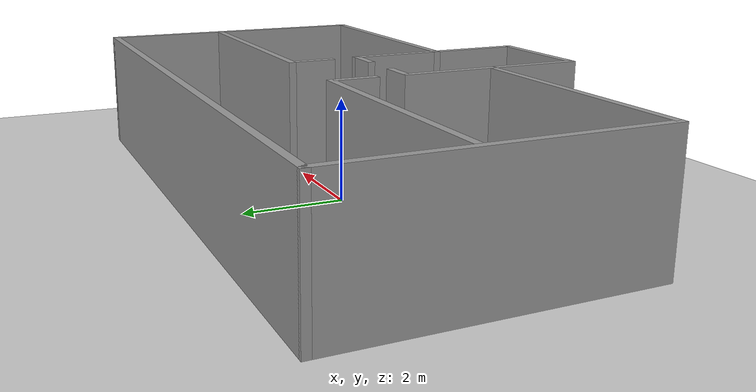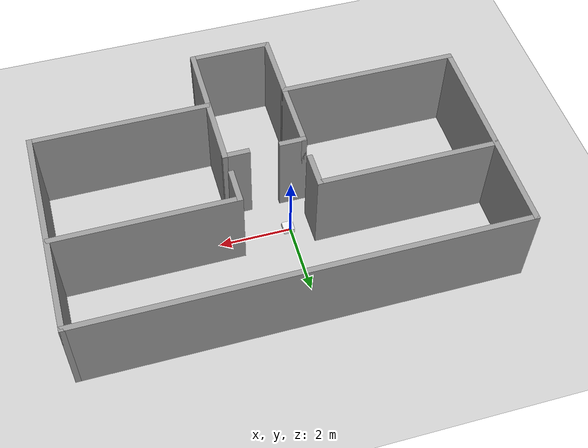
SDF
<sdf version="1.7">
 <world name="default">
  <light name="sun" type="directional">
   <pose>0 0 10 0 -0 0</pose>
   <diffuse>0.8 0.8 0.8 1</diffuse>
   <specular>0.2 0.2 0.2 1</specular>
   <attenuation>
    <range>1000</range>
    <constant>0.9</constant>
    <linear>0.01</linear>
    <quadratic>0.001</quadratic>
   </attenuation>
   <direction>-0.5 0.1 -0.9</direction>
   <spot><inner_angle>0</inner_angle><outer_angle>0</outer_angle><falloff>0</falloff></spot>
  </light>
  <model name="ground_plane">
   <static>1</static>
   <link name="link">
    <collision name="collision">
     <geometry><plane><normal>0 0 1</normal><size>100 100</size></plane></geometry>
     <surface><friction><ode><mu>100</mu><mu2>50</mu2></ode></friction></surface>
    </collision>
    <visual name="visual">
     <cast_shadows>0</cast_shadows>
     <geometry><plane><normal>0 0 1</normal><size>100 100</size></plane></geometry>
     <material>
      <script><uri>file://media/materials/scripts/gazebo.material</uri><name>Gazebo/Grey</name></script>
     </material>
    </visual>
   </link>
  </model>
  <gravity>0 0 -9.8</gravity>
  <magnetic_field>6e-06 2.3e-05 -4.2e-05</magnetic_field>
  <atmosphere type="adiabatic"/>
  <physics type="ode">
   <max_step_size>0.001</max_step_size>
   <real_time_factor>1</real_time_factor>
   <real_time_update_rate>1000</real_time_update_rate>
  </physics>
  <scene><ambient>0.4 0.4 0.4 1</ambient><background>0.7 0.7 0.7 1</background><shadows>1</shadows></scene>
  <audio><device>default</device></audio>
  <spherical_coordinates>
   <surface_model>EARTH_WGS84</surface_model>
   <latitude_deg>0</latitude_deg>
   <longitude_deg>0</longitude_deg>
   <elevation>0</elevation>
   <heading_deg>0</heading_deg>
  </spherical_coordinates>
  <model name="my_bot">
   <link name="base_link">
    <inertial>
     <pose>0.055714 0 0.078571 0 -0 0</pose>
     <mass>0.7</mass>
     <inertia>
      <ixx>0.0064169</ixx>
      <ixy>0</ixy>
      <ixz>0.00118929</ixz>
      <iyy>0.00745405</iyy>
      <iyz>0</iyz>
      <izz>0.00876214</izz>
     </inertia>
    </inertial>
    <collision name="base_link_fixed_joint_lump__chassis_collision">
     <pose>0.05 0 0.075 0 -0 0</pose>
     <geometry><box><size>0.3 0.3 0.15</size></box></geometry>
    </collision>
    <collision name="base_link_fixed_joint_lump__caster_wheel_collision_1">
     <pose>0.14 0 0 0 -0 0</pose>
     <geometry><sphere><radius>0.05</radius></sphere></geometry>
     <surface><friction><ode><mu>0.001</mu><mu2>0.001</mu2></ode></friction></surface>
    </collision>
    <collision name="base_link_fixed_joint_lump__laser_frame_collision_2">
     <pose>0 0 0.175 0 -0 0</pose>
     <geometry><cylinder><length>0.04</length><radius>0.05</radius></cylinder></geometry>
    </collision>
    <visual name="base_link_fixed_joint_lump__chassis_visual">
     <pose>0.05 0 0.075 0 -0 0</pose>
     <geometry><box><size>0.3 0.3 0.15</size></box></geometry>
     <material>
      <script><name>Gazebo/White</name><uri>file://media/materials/scripts/gazebo.material</uri></script>
     </material>
    </visual>
    <visual name="base_link_fixed_joint_lump__caster_wheel_visual_1">
     <pose>0.14 0 0 0 -0 0</pose>
     <geometry><sphere><radius>0.05</radius></sphere></geometry>
     <material>
      <script><name>Gazebo/Black</name><uri>file://media/materials/scripts/gazebo.material</uri></script>
     </material>
    </visual>
    <visual name="base_link_fixed_joint_lump__laser_frame_visual_2">
     <pose>0 0 0.175 0 -0 0</pose>
     <geometry><cylinder><length>0.04</length><radius>0.05</radius></cylinder></geometry>
     <material>
      <script><name>Gazebo/Red</name><uri>file://media/materials/scripts/gazebo.material</uri></script>
     </material>
    </visual>
    <sensor name="laser" type="ray">
     <visualize>1</visualize>
     <update_rate>10</update_rate>
     <ray>
      <scan>
       <horizontal>
        <samples>360</samples>
        <min_angle>-3.14</min_angle>
        <max_angle>3.14</max_angle>
        <resolution>1</resolution>
       </horizontal>
       <vertical><samples>1</samples><min_angle>0</min_angle><max_angle>0</max_angle></vertical>
      </scan>
      <range><min>0.3</min><max>12</max></range>
     </ray>
     <plugin name="laser_controller" filename="libgazebo_ros_ray_sensor.so">
      <ros><argument>~/out:=scan</argument></ros>
      <output_type>sensor_msgs/LaserScan</output_type>
      <frame_name>laser_frame</frame_name>
     </plugin>
     <pose>0 0 0.175 0 -0 0</pose>
    </sensor>
   </link>
   <joint name="left_wheel_joint" type="revolute">
    <pose relative_to="base_link">0 0.175 0 -1.5708 0 0</pose>
    <parent>base_link</parent>
    <child>left_wheel</child>
    <axis>
     <xyz>0 0 1</xyz>
     <limit><lower>-1e+16</lower><upper>1e+16</upper></limit>
     <dynamics><spring_reference>0</spring_reference><spring_stiffness>0</spring_stiffness></dynamics>
    </axis>
   </joint>
   <link name="left_wheel">
    <pose relative_to="left_wheel_joint">0 0 0 0 -0 0</pose>
    <inertial>
     <mass>0.1</mass>
     <inertia>
      <ixx>7.58333e-05</ixx>
      <ixy>0</ixy>
      <ixz>0</ixz>
      <iyy>7.58333e-05</iyy>
      <iyz>0</iyz>
      <izz>0.000125</izz>
     </inertia>
    </inertial>
    <collision name="left_wheel_collision"><geometry><sphere><radius>0.05</radius></sphere></geometry></collision>
    <visual name="left_wheel_visual">
     <geometry><cylinder><length>0.04</length><radius>0.05</radius></cylinder></geometry>
     <material>
      <script><name>Gazebo/Blue</name><uri>file://media/materials/scripts/gazebo.material</uri></script>
     </material>
    </visual>
   </link>
   <joint name="right_wheel_joint" type="revolute">
    <pose relative_to="base_link">0 -0.175 0 1.5708 -0 0</pose>
    <parent>base_link</parent>
    <child>right_wheel</child>
    <axis>
     <xyz>0 0 -1</xyz>
     <limit><lower>-1e+16</lower><upper>1e+16</upper></limit>
     <dynamics><spring_reference>0</spring_reference><spring_stiffness>0</spring_stiffness></dynamics>
    </axis>
   </joint>
   <link name="right_wheel">
    <pose relative_to="right_wheel_joint">0 0 0 0 -0 0</pose>
    <inertial>
     <mass>0.1</mass>
     <inertia>
      <ixx>7.58333e-05</ixx>
      <ixy>0</ixy>
      <ixz>0</ixz>
      <iyy>7.58333e-05</iyy>
      <iyz>0</iyz>
      <izz>0.000125</izz>
     </inertia>
    </inertial>
    <collision name="right_wheel_collision">
     <geometry><sphere><radius>0.05</radius></sphere></geometry>
    </collision>
    <visual name="right_wheel_visual">
     <geometry><cylinder><length>0.04</length><radius>0.05</radius></cylinder></geometry>
     <material>
      <script><name>Gazebo/Blue</name><uri>file://media/materials/scripts/gazebo.material</uri></script>
     </material>
    </visual>
   </link>
   <plugin name="gazebo_ros" filename="libgazebo_ros_init.so"/>
   <plugin name="gazebo_ros_state" filename="libgazebo_ros_p3d.so">
    <body_name>base_link</body_name>
    <frame_name>map</frame_name>
    <update_rate>50.0</update_rate>
   </plugin>
   <static>0</static>
   <plugin name="gazebo_ros2_control" filename="libgazebo_ros2_control.so">
    <parameters>/home/hoanglong/myrobot_ws/src/install/robot_model/share/robot_model/config/my_controllers.yaml</parameters>
   </plugin>
   <pose>0.012835 0.000365 0.049997 -1.6e-05 -2.1e-05 -0.001203</pose>
  </model>
  <model name="MAP">
   <pose>0.438152 -0.878426 0 0 -0 0</pose>
   <link name="Wall_1">
    <collision name="Wall_1_Collision">
     <geometry><box><size>12 0.15 2.5</size></box></geometry>
     <pose>0 0 1.25 0 -0 0</pose>
    </collision>
    <visual name="Wall_1_Visual">
     <pose>0 0 1.25 0 -0 0</pose>
     <geometry><box><size>12 0.15 2.5</size></box></geometry>
     <material>
      <script><uri>file://media/materials/scripts/gazebo.material</uri><name>Gazebo/Grey</name></script>
      <ambient>1 1 1 1</ambient>
     </material>
     <meta><layer>0</layer></meta>
    </visual>
    <pose>-0 3.85 0 0 -0 0</pose>
   </link>
   <link name="Wall_13">
    <collision name="Wall_13_Collision">
     <geometry><box><size>5 0.15 2.5</size></box></geometry>
     <pose>0 0 1.25 0 -0 0</pose>
    </collision>
    <visual name="Wall_13_Visual">
     <pose>0 0 1.25 0 -0 0</pose>
     <geometry><box><size>5 0.15 2.5</size></box></geometry>
     <material>
      <script><uri>file://media/materials/scripts/gazebo.material</uri><name>Gazebo/Grey</name></script>
      <ambient>1 1 1 1</ambient>
     </material>
     <meta><layer>0</layer></meta>
    </visual>
    <pose>-3.5 -2 0 0 -0 0</pose>
   </link>
   <link name="Wall_14">
    <collision name="Wall_14_Collision">
     <geometry><box><size>2 0.15 2.5</size></box></geometry>
     <pose>0 0 1.25 0 -0 0</pose>
    </collision>
    <visual name="Wall_14_Visual">
     <pose>0 0 1.25 0 -0 0</pose>
     <geometry><box><size>2 0.15 2.5</size></box></geometry>
     <material>
      <script><uri>file://media/materials/scripts/gazebo.material</uri><name>Gazebo/Grey</name></script>
      <ambient>1 1 1 1</ambient>
     </material>
     <meta><layer>0</layer></meta>
    </visual>
    <pose>-1.075 -1.075 0 0 -0 1.5708</pose>
   </link>
   <link name="Wall_16">
    <collision name="Wall_16_Collision">
     <geometry><box><size>2 0.15 2.5</size></box></geometry>
     <pose>0 0 1.25 0 -0 0</pose>
    </collision>
    <visual name="Wall_16_Visual">
     <pose>0 0 1.25 0 -0 0</pose>
     <geometry><box><size>2 0.15 2.5</size></box></geometry>
     <material>
      <script><uri>file://media/materials/scripts/gazebo.material</uri><name>Gazebo/Grey</name></script>
      <ambient>1 1 1 1</ambient>
     </material>
     <meta><layer>0</layer></meta>
    </visual>
    <pose>1.075 -1.075 0 0 -0 1.5708</pose>
   </link>
   <link name="Wall_19">
    <collision name="Wall_19_Collision">
     <geometry><box><size>2 0.15 2.5</size></box></geometry>
     <pose>0 0 1.25 0 -0 0</pose>
    </collision>
    <visual name="Wall_19_Visual">
     <pose>0 0 1.25 0 -0 0</pose>
     <geometry><box><size>2 0.15 2.5</size></box></geometry>
     <material>
      <script><uri>file://media/materials/scripts/gazebo.material</uri><name>Gazebo/Grey</name></script>
      <ambient>1 1 1 1</ambient>
     </material>
     <meta><layer>0</layer></meta>
    </visual>
    <pose>-1.075 -2.925 0 0 -0 -1.5708</pose>
   </link>
   <link name="Wall_21">
    <collision name="Wall_21_Collision">
     <geometry><box><size>2 0.15 2.5</size></box></geometry>
     <pose>0 0 1.25 0 -0 0</pose>
    </collision>
    <visual name="Wall_21_Visual">
     <pose>0 0 1.25 0 -0 0</pose>
     <geometry><box><size>2 0.15 2.5</size></box></geometry>
     <material>
      <script><uri>file://media/materials/scripts/gazebo.material</uri><name>Gazebo/Grey</name></script>
      <ambient>1 1 1 1</ambient>
     </material>
     <meta><layer>0</layer></meta>
    </visual>
    <pose>1.075 -2.925 0 0 -0 -1.5708</pose>
   </link>
   <link name="Wall_22">
    <collision name="Wall_22_Collision">
     <geometry><box><size>2.3 0.15 2.5</size></box></geometry>
     <pose>0 0 1.25 0 -0 0</pose>
    </collision>
    <visual name="Wall_22_Visual">
     <pose>0 0 1.25 0 -0 0</pose>
     <geometry><box><size>2.3 0.15 2.5</size></box></geometry>
     <material>
      <script><uri>file://media/materials/scripts/gazebo.material</uri><name>Gazebo/Grey</name></script>
      <ambient>1 1 1 1</ambient>
     </material>
     <meta><layer>0</layer></meta>
    </visual>
    <pose>-0 -3.85 0 0 -0 3.14159</pose>
   </link>
   <link name="Wall_24">
    <collision name="Wall_24_Collision">
     <geometry><box><size>0.75 0.15 2.5</size></box></geometry>
     <pose>0 0 1.25 0 -0 0</pose>
    </collision>
    <visual name="Wall_24_Visual">
     <pose>0 0 1.25 0 -0 0</pose>
     <geometry><box><size>0.75 0.15 2.5</size></box></geometry>
     <material>
      <script><uri>file://media/materials/scripts/gazebo.material</uri><name>Gazebo/Grey</name></script>
      <ambient>1 1 1 1</ambient>
     </material>
     <meta><layer>0</layer></meta>
    </visual>
    <pose>-0.775 -0.15 0 0 -0 0</pose>
   </link>
   <link name="Wall_26">
    <collision name="Wall_26_Collision">
     <geometry><box><size>0.75 0.15 2.5</size></box></geometry>
     <pose>0 0 1.25 0 -0 0</pose>
    </collision>
    <visual name="Wall_26_Visual">
     <pose>0 0 1.25 0 -0 0</pose>
     <geometry><box><size>0.75 0.15 2.5</size></box></geometry>
     <material>
      <script><uri>file://media/materials/scripts/gazebo.material</uri><name>Gazebo/Grey</name></script>
      <ambient>1 1 1 1</ambient>
     </material>
     <meta><layer>0</layer></meta>
    </visual>
    <pose>0.775 -0.15 0 0 -0 3.14159</pose>
   </link>
   <link name="Wall_28">
    <collision name="Wall_28_Collision">
     <geometry><box><size>5 0.15 2.5</size></box></geometry>
     <pose>0 0 1.25 0 -0 0</pose>
    </collision>
    <visual name="Wall_28_Visual">
     <pose>0 0 1.25 0 -0 0</pose>
     <geometry><box><size>5 0.15 2.5</size></box></geometry>
     <material>
      <script><uri>file://media/materials/scripts/gazebo.material</uri><name>Gazebo/Grey</name></script>
      <ambient>1 1 1 1</ambient>
     </material>
     <meta><layer>0</layer></meta>
    </visual>
    <pose>-3.48381 1.3557 0 0 -0 0</pose>
   </link>
   <link name="Wall_29">
    <collision name="Wall_29_Collision">
     <geometry><box><size>1 0.15 2.5</size></box></geometry>
     <pose>0 0 1.25 0 -0 0</pose>
    </collision>
    <visual name="Wall_29_Visual">
     <pose>0 0 1.25 0 -0 0</pose>
     <geometry><box><size>1 0.15 2.5</size></box></geometry>
     <material>
      <script><uri>file://media/materials/scripts/gazebo.material</uri><name>Gazebo/Grey</name></script>
      <ambient>1 1 1 1</ambient>
     </material>
     <meta><layer>0</layer></meta>
    </visual>
    <pose>-1.05881 0.930695 0 0 -0 -1.5708</pose>
   </link>
   <link name="Wall_3">
    <collision name="Wall_3_Collision">
     <geometry><box><size>6 0.15 2.5</size></box></geometry>
     <pose>0 0 1.25 0 -0 0</pose>
    </collision>
    <visual name="Wall_3_Visual">
     <pose>0 0 1.25 0 -0 0</pose>
     <geometry><box><size>6 0.15 2.5</size></box></geometry>
     <material>
      <script><uri>file://media/materials/scripts/gazebo.material</uri><name>Gazebo/Grey</name></script>
      <ambient>1 1 1 1</ambient>
     </material>
     <meta><layer>0</layer></meta>
    </visual>
    <pose>-5.925 0.925 0 0 -0 -1.5708</pose>
   </link>
   <link name="Wall_31">
    <collision name="Wall_31_Collision">
     <geometry><box><size>5 0.15 2.5</size></box></geometry>
     <pose>0 0 1.25 0 -0 0</pose>
    </collision>
    <visual name="Wall_31_Visual">
     <pose>0 0 1.25 0 -0 0</pose>
     <geometry><box><size>5 0.15 2.5</size></box></geometry>
     <material>
      <script><uri>file://media/materials/scripts/gazebo.material</uri><name>Gazebo/Grey</name></script>
      <ambient>1 1 1 1</ambient>
     </material>
     <meta><layer>0</layer></meta>
    </visual>
    <pose>3.46399 1.30956 0 0 -0 3.14159</pose>
   </link>
   <link name="Wall_34">
    <collision name="Wall_34_Collision">
     <geometry><box><size>1 0.15 2.5</size></box></geometry>
     <pose>0 0 1.25 0 -0 0</pose>
    </collision>
    <visual name="Wall_34_Visual">
     <pose>0 0 1.25 0 -0 0</pose>
     <geometry><box><size>1 0.15 2.5</size></box></geometry>
     <material>
      <script><uri>file://media/materials/scripts/gazebo.material</uri><name>Gazebo/Grey</name></script>
      <ambient>1 1 1 1</ambient>
     </material>
     <meta><layer>0</layer></meta>
    </visual>
    <pose>1.04655 0.884557 0 0 -0 -1.5708</pose>
   </link>
   <link name="Wall_6">
    <collision name="Wall_6_Collision">
     <geometry><box><size>6 0.15 2.5</size></box></geometry>
     <pose>0 0 1.25 0 -0 0</pose>
    </collision>
    <visual name="Wall_6_Visual">
     <pose>0 0 1.25 0 -0 0</pose>
     <geometry><box><size>6 0.15 2.5</size></box></geometry>
     <material>
      <script><uri>file://media/materials/scripts/gazebo.material</uri><name>Gazebo/Grey</name></script>
      <ambient>1 1 1 1</ambient>
     </material>
     <meta><layer>0</layer></meta>
    </visual>
    <pose>5.925 0.925 0 0 -0 -1.5708</pose>
   </link>
   <link name="Wall_7">
    <collision name="Wall_7_Collision">
     <geometry><box><size>5 0.15 2.5</size></box></geometry>
     <pose>0 0 1.25 0 -0 0</pose>
    </collision>
    <visual name="Wall_7_Visual">
     <pose>0 0 1.25 0 -0 0</pose>
     <geometry><box><size>5 0.15 2.5</size></box></geometry>
     <material>
      <script><uri>file://media/materials/scripts/gazebo.material</uri><name>Gazebo/Grey</name></script>
      <ambient>1 1 1 1</ambient>
     </material>
     <meta><layer>0</layer></meta>
    </visual>
    <pose>3.5 -2 0 0 -0 3.14159</pose>
   </link>
   <static>1</static>
  </model>
 </world>
</sdf>
